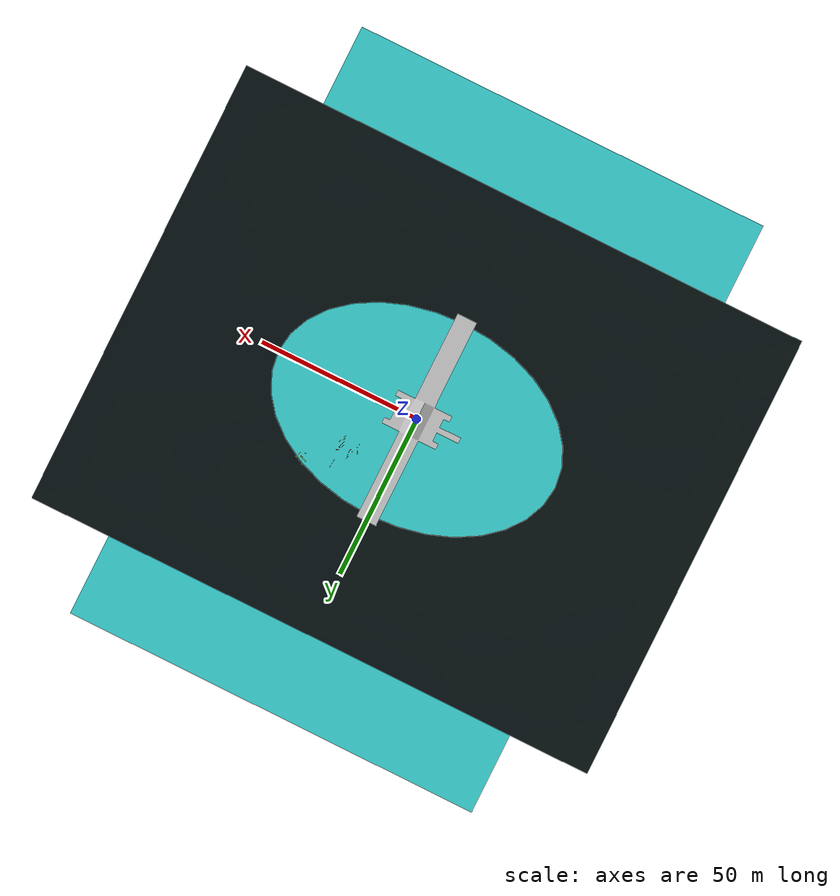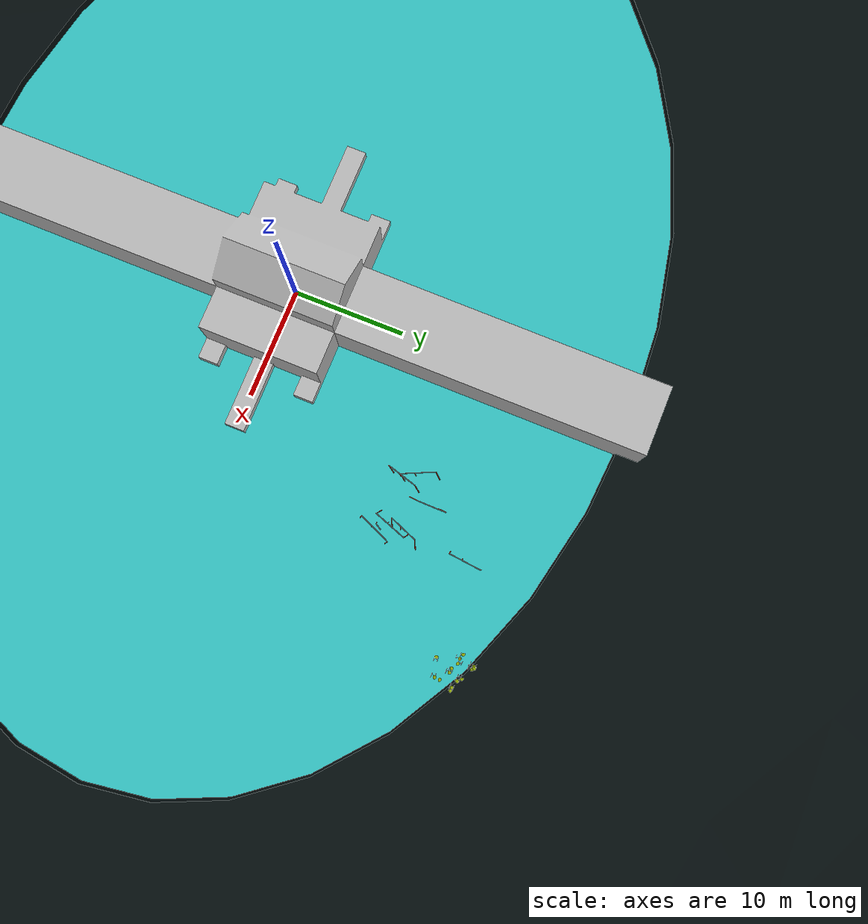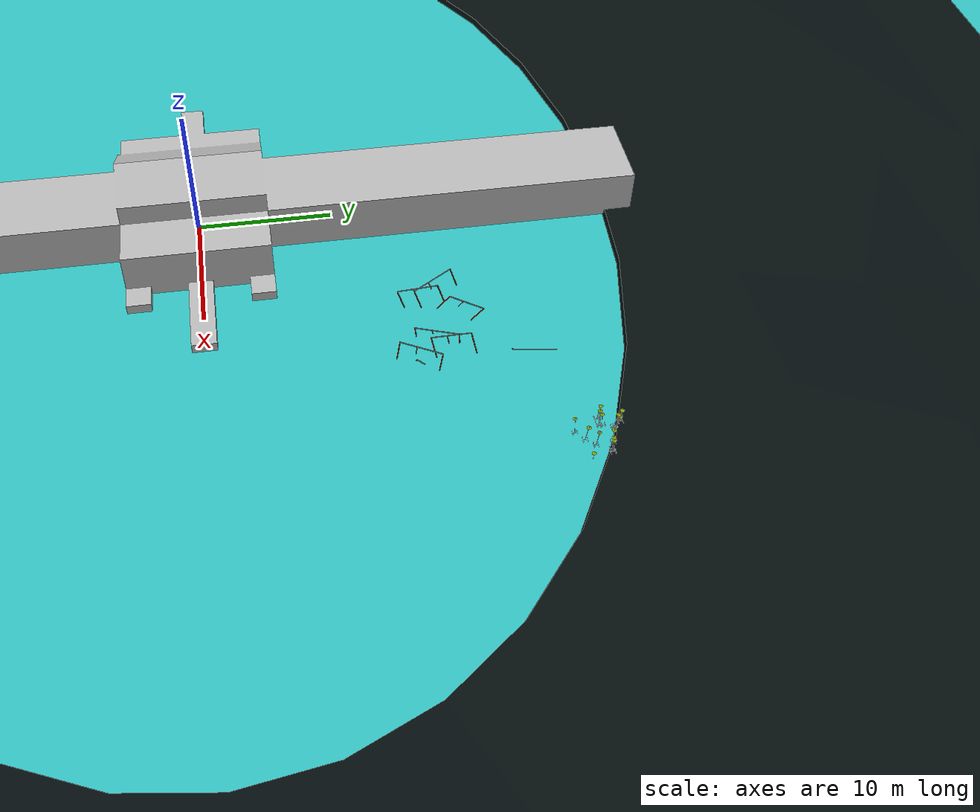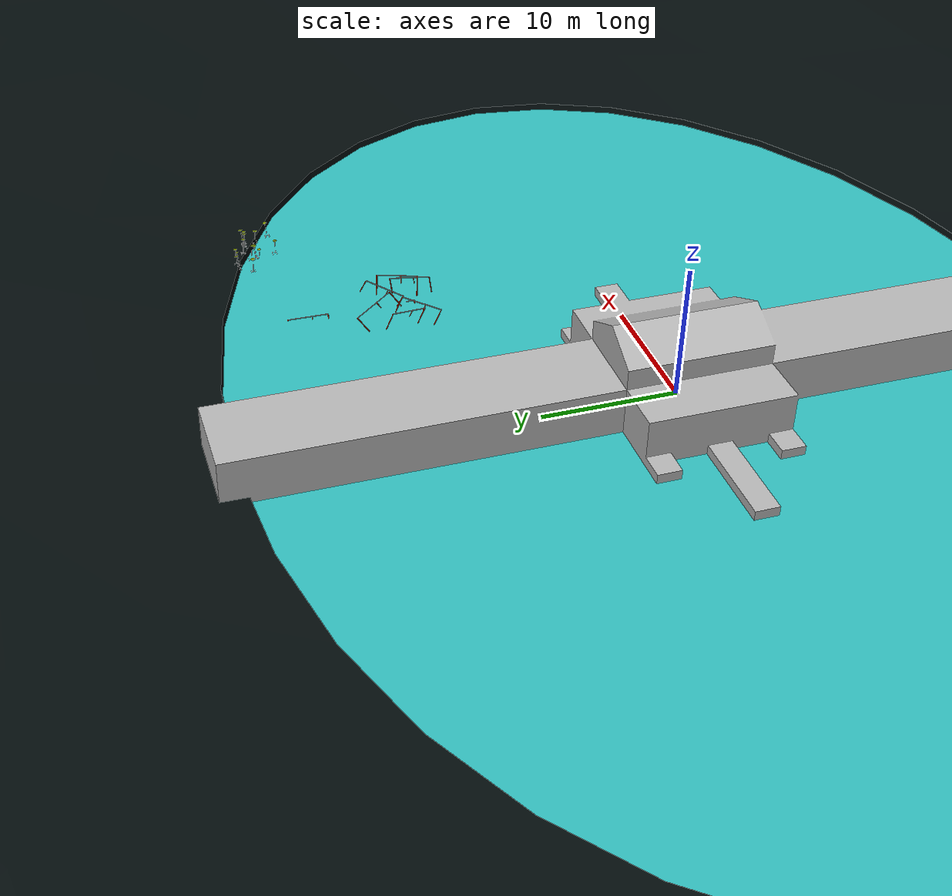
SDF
<sdf version="1.6">
 <world name="lake">
  <physics default="1" name="default_physics" type="ode">
   <max_step_size>0.002</max_step_size>
   <real_time_factor>1</real_time_factor>
   <real_time_update_rate>500</real_time_update_rate>
   <ode>
    <solver>
     <type>quick</type>
     <iters>50</iters>
     <sor>0.5</sor>
     <use_dynamic_moi_rescaling>0</use_dynamic_moi_rescaling>
    </solver>
    <constraints>
     <cfm>0</cfm>
     <erp>0.2</erp>
     <contact_max_correcting_vel>100</contact_max_correcting_vel>
     <contact_surface_layer>0.001</contact_surface_layer>
    </constraints>
   </ode>
  </physics>
  <scene>
   <sky><clouds><speed>0</speed></clouds></sky>
   <shadows>1</shadows>
   <background>0.7 0.7 0.7 1</background>
   <ambient>0.0167654080885 -0.00474146357599 -0.0837017731514 0.995824889529</ambient>
   <fog>
    <color>0.0983605187622 0.187515055023 0.332495478228 0.998556682466</color>
    <type>linear</type>
    <start>4</start>
    <end>-1</end>
   </fog>
  </scene>
  <spherical_coordinates>
   <latitude_deg>47.6279</latitude_deg>
   <longitude_deg>9.33455</longitude_deg>
   <surface_model>EARTH_WGS84</surface_model>
   <elevation>0</elevation>
   <heading_deg>0</heading_deg>
  </spherical_coordinates>
  <model name="world_ned">
   <static>1</static>
   <link name="world_ned">
    <gravity>0</gravity>
    <pose>0 0 0 -3.14159 -0 1.5708</pose>
    <visual name="N_visual">
     <pose>0.25 0 0 1.5708 -0 1.5708</pose>
     <geometry><cylinder><radius>0.01</radius><length>0.5</length></cylinder></geometry>
     <material>
      <script><uri>file://media/materials/scripts/gazebo.material</uri><name>Gazebo/Red</name></script>
     </material>
    </visual>
    <visual name="E_visual">
     <pose>0 0.25 0 1.5708 -0 0</pose>
     <geometry><cylinder><radius>0.01</radius><length>0.5</length></cylinder></geometry>
     <material>
      <script><uri>file://media/materials/scripts/gazebo.material</uri><name>Gazebo/Green</name></script>
     </material>
    </visual>
    <visual name="D_visual">
     <pose>0 0 0.25 0 -0 0</pose>
     <geometry><cylinder><radius>0.01</radius><length>0.5</length></cylinder></geometry>
     <material>
      <script><uri>file://media/materials/scripts/gazebo.material</uri><name>Gazebo/Blue</name></script>
     </material>
    </visual>
   </link>
  </model>
  <model name="lake">
   <static>1</static>
   <link name="lake_link">
    <visual name="lake_bottom">
     <cast_shadows>0</cast_shadows>
     <pose>0 0 0.5 0 0 0</pose>
     <geometry><mesh><uri>model://transdec/meshes/transdec.dae</uri><scale>1 1 1</scale></mesh></geometry>
     <material>
      <script>
       <uri>file://Media/materials/scripts/sand.material</uri>
       <name>UUVSimulator/SandAndStones</name>
      </script>
     </material>
    </visual>
    <collision name="lake_bottom">
     <pose>0 0 0.5 0 -0 0</pose>
     <geometry><mesh><uri>model://transdec/meshes/transdec.dae</uri><scale>1 1 1</scale></mesh></geometry>
    </collision>
    <visual name="surface">
     <geometry>
      <mesh><uri>model://water_surface/meshes/water_surface.dae</uri><scale>1 1 1</scale></mesh>
     </geometry>
     <material>
      <script>
       <uri>file://Media/materials/scripts/water.material</uri>
       <name>UUVSimulator/StaticTurquoiseWater</name>
      </script>
     </material>
    </visual>
   </link>
  </model>
  <plugin filename="libuuv_underwater_current_ros_plugin.so" name="underwater_current_plugin">
   <namespace>hydrodynamics</namespace>
   <constant_current>
    <topic>current_velocity</topic>
    <velocity><mean>0</mean><min>0</min><max>5</max><mu>0.0</mu><noiseAmp>0.0</noiseAmp></velocity>
    <horizontal_angle>
     <mean>0</mean>
     <min>-3.141592653589793238</min>
     <max>3.141592653589793238</max>
     <mu>0.0</mu>
     <noiseAmp>0.0</noiseAmp>
    </horizontal_angle>
    <vertical_angle>
     <mean>0</mean>
     <min>-3.141592653589793238</min>
     <max>3.141592653589793238</max>
     <mu>0.0</mu>
     <noiseAmp>0.0</noiseAmp>
    </vertical_angle>
   </constant_current>
  </plugin>
  <plugin filename="libuuv_sc_ros_interface_plugin.so" name="sc_interface"/>
  <gravity>0 0 -9.8</gravity>
  <magnetic_field>6e-06 2.3e-05 -4.2e-05</magnetic_field>
  <atmosphere type="adiabatic"/>
  <model name="transdec_bridge">
   <static>1</static>
   <link name="link">
    <must_be_base_link>1</must_be_base_link>
    <visual name="visual">
     <cast_shadows>0</cast_shadows>
     <geometry><mesh><uri>model://transdec_bridge/meshes/transdec_bridge.dae</uri></mesh></geometry>
    </visual>
   </link>
  </model>
  <light name="sun" type="directional">
   <pose>18.2126076957 -5.79946119974 -6.02682607657 1.12919550986 1.44755098993 -0.985897130758</pose>
   <diffuse>0.950566882061 0.898385869062 1.03819154277 1.12826140491</diffuse>
   <specular>0.108822657704 0.0932887104255 0.106470574288 0.993148982195</specular>
   <direction>-0.0866389352842 0.00464495822582 -0.843713179104</direction>
  </light>
  <model name="gate1">
   <static>true</static>
   <link name="link">
    <must_be_base_link>1</must_be_base_link>
    <visual name="visual">
     <cast_shadows>0</cast_shadows>
     <geometry><mesh><uri>model://gate/meshes/gate.dae</uri></mesh></geometry>
    </visual>
    <collision name="collision">
     <geometry><mesh><uri>model://gate/meshes/gate.dae</uri></mesh></geometry>
    </collision>
    <sensor name="gate_success_zones" type="contact">
     <topic>gate_detect</topic>
     <update_rate>5</update_rate>
     <contact>
      <collision><geometry><mesh><uri>model://gate/meshes/gate_success_zones.dae</uri></mesh></geometry></collision>
     </contact>
    </sensor>
   </link>
   <pose>15.1254934937 21.0007900945 -0.778530676202 0.844097662915 0.0557839341935 1.4730426383</pose>
  </model>
  <model name="crucifix_tower1">
   <static>1</static>
   <link name="link">
    <must_be_base_link>1</must_be_base_link>
    <visual name="visual">
     <cast_shadows>0</cast_shadows>
     <geometry><mesh><uri>model://crucifix_tower/meshes/crucifix_tower.dae</uri></mesh></geometry>
    </visual>
   </link>
   <pose>23.9417196431 24.7304361303 1.20192088728 -0.00515746311289 0.131057945724 1.64463283784</pose>
  </model>
  <model name="gate1">
   <static>true</static>
   <link name="link">
    <must_be_base_link>1</must_be_base_link>
    <visual name="visual">
     <cast_shadows>0</cast_shadows>
     <geometry><mesh><uri>model://gate/meshes/gate.dae</uri></mesh></geometry>
    </visual>
    <collision name="collision">
     <geometry><mesh><uri>model://gate/meshes/gate.dae</uri></mesh></geometry>
    </collision>
    <sensor name="gate_success_zones" type="contact">
     <topic>gate_detect</topic>
     <update_rate>5</update_rate>
     <contact>
      <collision><geometry><mesh><uri>model://gate/meshes/gate_success_zones.dae</uri></mesh></geometry></collision>
     </contact>
    </sensor>
   </link>
   <pose>16.4292639358 14.6917078046 -2.4962130583 0.32237252932 -0.208764738259 2.17935145505</pose>
  </model>
  <model name="crucifix_tower1">
   <static>1</static>
   <link name="link">
    <must_be_base_link>1</must_be_base_link>
    <visual name="visual">
     <cast_shadows>0</cast_shadows>
     <geometry><mesh><uri>model://crucifix_tower/meshes/crucifix_tower.dae</uri></mesh></geometry>
    </visual>
   </link>
   <pose>26.2738611325 25.1615546388 0.896292136785 0.0242967922557 -0.0195096788973 1.47094460901</pose>
  </model>
  <model name="gate1">
   <static>true</static>
   <link name="link">
    <must_be_base_link>1</must_be_base_link>
    <visual name="visual">
     <cast_shadows>0</cast_shadows>
     <geometry><mesh><uri>model://gate/meshes/gate.dae</uri></mesh></geometry>
    </visual>
    <collision name="collision">
     <geometry><mesh><uri>model://gate/meshes/gate.dae</uri></mesh></geometry>
    </collision>
    <sensor name="gate_success_zones" type="contact">
     <topic>gate_detect</topic>
     <update_rate>5</update_rate>
     <contact>
      <collision><geometry><mesh><uri>model://gate/meshes/gate_success_zones.dae</uri></mesh></geometry></collision>
     </contact>
    </sensor>
   </link>
   <pose>15.5004476086 18.8384074119 -3.89074958337 0.38006776586 0.260157247392 1.63485411441</pose>
  </model>
  <model name="crucifix_tower1">
   <static>1</static>
   <link name="link">
    <must_be_base_link>1</must_be_base_link>
    <visual name="visual">
     <cast_shadows>0</cast_shadows>
     <geometry><mesh><uri>model://crucifix_tower/meshes/crucifix_tower.dae</uri></mesh></geometry>
    </visual>
   </link>
   <pose>26.1925533191 24.0456357121 -0.623667039147 0.00129578367662 0.0118639929148 1.5430887067</pose>
  </model>
  <model name="gate1">
   <static>true</static>
   <link name="link">
    <must_be_base_link>1</must_be_base_link>
    <visual name="visual">
     <cast_shadows>0</cast_shadows>
     <geometry><mesh><uri>model://gate/meshes/gate.dae</uri></mesh></geometry>
    </visual>
    <collision name="collision">
     <geometry><mesh><uri>model://gate/meshes/gate.dae</uri></mesh></geometry>
    </collision>
    <sensor name="gate_success_zones" type="contact">
     <topic>gate_detect</topic>
     <update_rate>5</update_rate>
     <contact>
      <collision><geometry><mesh><uri>model://gate/meshes/gate_success_zones.dae</uri></mesh></geometry></collision>
     </contact>
    </sensor>
   </link>
   <pose>16.045038436 15.6657019762 0.016064787976 -0.34948481688 -0.401477646881 1.17421973306</pose>
  </model>
  <model name="crucifix_tower1">
   <static>1</static>
   <link name="link">
    <must_be_base_link>1</must_be_base_link>
    <visual name="visual">
     <cast_shadows>0</cast_shadows>
     <geometry><mesh><uri>model://crucifix_tower/meshes/crucifix_tower.dae</uri></mesh></geometry>
    </visual>
   </link>
   <pose>25.9702960703 23.3887764241 1.79484242345 0.0257193378333 0.111844830569 1.54149088162</pose>
  </model>
  <model name="gate1">
   <static>true</static>
   <link name="link">
    <must_be_base_link>1</must_be_base_link>
    <visual name="visual">
     <cast_shadows>0</cast_shadows>
     <geometry><mesh><uri>model://gate/meshes/gate.dae</uri></mesh></geometry>
    </visual>
    <collision name="collision">
     <geometry><mesh><uri>model://gate/meshes/gate.dae</uri></mesh></geometry>
    </collision>
    <sensor name="gate_success_zones" type="contact">
     <topic>gate_detect</topic>
     <update_rate>5</update_rate>
     <contact>
      <collision><geometry><mesh><uri>model://gate/meshes/gate_success_zones.dae</uri></mesh></geometry></collision>
     </contact>
    </sensor>
   </link>
   <pose>12.3416079216 12.837257329 -4.67205659003 -0.152578635036 0.514386179061 2.05289592563</pose>
  </model>
  <model name="crucifix_tower1">
   <static>1</static>
   <link name="link">
    <must_be_base_link>1</must_be_base_link>
    <visual name="visual">
     <cast_shadows>0</cast_shadows>
     <geometry><mesh><uri>model://crucifix_tower/meshes/crucifix_tower.dae</uri></mesh></geometry>
    </visual>
   </link>
   <pose>23.6262504035 25.0577951715 0.221228053877 -0.0686323129111 0.0090503051307 1.64825233166</pose>
  </model>
  <model name="gate1">
   <static>true</static>
   <link name="link">
    <must_be_base_link>1</must_be_base_link>
    <visual name="visual">
     <cast_shadows>0</cast_shadows>
     <geometry><mesh><uri>model://gate/meshes/gate.dae</uri></mesh></geometry>
    </visual>
    <collision name="collision">
     <geometry><mesh><uri>model://gate/meshes/gate.dae</uri></mesh></geometry>
    </collision>
    <sensor name="gate_success_zones" type="contact">
     <topic>gate_detect</topic>
     <update_rate>5</update_rate>
     <contact>
      <collision><geometry><mesh><uri>model://gate/meshes/gate_success_zones.dae</uri></mesh></geometry></collision>
     </contact>
    </sensor>
   </link>
   <pose>13.7722483064 14.5544470505 -4.24416033581 0.261671976102 -0.0732646450894 1.70012023832</pose>
  </model>
  <model name="crucifix_tower1">
   <static>1</static>
   <link name="link">
    <must_be_base_link>1</must_be_base_link>
    <visual name="visual">
     <cast_shadows>0</cast_shadows>
     <geometry><mesh><uri>model://crucifix_tower/meshes/crucifix_tower.dae</uri></mesh></geometry>
    </visual>
   </link>
   <pose>26.5068859958 25.1727251709 0.943399038394 0.0715170518681 -0.0545247034271 1.50141127646</pose>
  </model>
  <model name="gate1">
   <static>true</static>
   <link name="link">
    <must_be_base_link>1</must_be_base_link>
    <visual name="visual">
     <cast_shadows>0</cast_shadows>
     <geometry><mesh><uri>model://gate/meshes/gate.dae</uri></mesh></geometry>
    </visual>
    <collision name="collision">
     <geometry><mesh><uri>model://gate/meshes/gate.dae</uri></mesh></geometry>
    </collision>
    <sensor name="gate_success_zones" type="contact">
     <topic>gate_detect</topic>
     <update_rate>5</update_rate>
     <contact>
      <collision><geometry><mesh><uri>model://gate/meshes/gate_success_zones.dae</uri></mesh></geometry></collision>
     </contact>
    </sensor>
   </link>
   <pose>12.0512549273 15.2114583726 0.988195128182 -0.27513646457 -0.236769029297 1.96416849117</pose>
  </model>
  <model name="crucifix_tower1">
   <static>1</static>
   <link name="link">
    <must_be_base_link>1</must_be_base_link>
    <visual name="visual">
     <cast_shadows>0</cast_shadows>
     <geometry><mesh><uri>model://crucifix_tower/meshes/crucifix_tower.dae</uri></mesh></geometry>
    </visual>
   </link>
   <pose>25.6043119493 25.4126804265 0.789910895842 0.0598178189197 -0.0491462629567 1.51792846047</pose>
  </model>
  <model name="gate1">
   <static>true</static>
   <link name="link">
    <must_be_base_link>1</must_be_base_link>
    <visual name="visual">
     <cast_shadows>0</cast_shadows>
     <geometry><mesh><uri>model://gate/meshes/gate.dae</uri></mesh></geometry>
    </visual>
    <collision name="collision">
     <geometry><mesh><uri>model://gate/meshes/gate.dae</uri></mesh></geometry>
    </collision>
    <sensor name="gate_success_zones" type="contact">
     <topic>gate_detect</topic>
     <update_rate>5</update_rate>
     <contact>
      <collision><geometry><mesh><uri>model://gate/meshes/gate_success_zones.dae</uri></mesh></geometry></collision>
     </contact>
    </sensor>
   </link>
   <pose>11.7304749508 14.0668092739 0.824481825661 -0.053026686112 -0.356157035266 1.24983256527</pose>
  </model>
  <model name="crucifix_tower1">
   <static>1</static>
   <link name="link">
    <must_be_base_link>1</must_be_base_link>
    <visual name="visual">
     <cast_shadows>0</cast_shadows>
     <geometry><mesh><uri>model://crucifix_tower/meshes/crucifix_tower.dae</uri></mesh></geometry>
    </visual>
   </link>
   <pose>25.3200799954 24.4357761332 0.282152153713 -0.0176084092929 0.100717493715 1.57446530148</pose>
  </model>
  <model name="gate1">
   <static>true</static>
   <link name="link">
    <must_be_base_link>1</must_be_base_link>
    <visual name="visual">
     <cast_shadows>0</cast_shadows>
     <geometry><mesh><uri>model://gate/meshes/gate.dae</uri></mesh></geometry>
    </visual>
    <collision name="collision">
     <geometry><mesh><uri>model://gate/meshes/gate.dae</uri></mesh></geometry>
    </collision>
    <sensor name="gate_success_zones" type="contact">
     <topic>gate_detect</topic>
     <update_rate>5</update_rate>
     <contact>
      <collision><geometry><mesh><uri>model://gate/meshes/gate_success_zones.dae</uri></mesh></geometry></collision>
     </contact>
    </sensor>
   </link>
   <pose>15.3709770344 14.2132453953 -1.02515360925 0.500609477867 0.36091276948 1.05322357796</pose>
  </model>
  <model name="crucifix_tower1">
   <static>1</static>
   <link name="link">
    <must_be_base_link>1</must_be_base_link>
    <visual name="visual">
     <cast_shadows>0</cast_shadows>
     <geometry><mesh><uri>model://crucifix_tower/meshes/crucifix_tower.dae</uri></mesh></geometry>
    </visual>
   </link>
   <pose>24.1089916049 26.2735737125 0.886671978667 0.0947541115112 -0.0390591511102 1.73795605041</pose>
  </model>
  <model name="gate1">
   <static>true</static>
   <link name="link">
    <must_be_base_link>1</must_be_base_link>
    <visual name="visual">
     <cast_shadows>0</cast_shadows>
     <geometry><mesh><uri>model://gate/meshes/gate.dae</uri></mesh></geometry>
    </visual>
    <collision name="collision">
     <geometry><mesh><uri>model://gate/meshes/gate.dae</uri></mesh></geometry>
    </collision>
    <sensor name="gate_success_zones" type="contact">
     <topic>gate_detect</topic>
     <update_rate>5</update_rate>
     <contact>
      <collision><geometry><mesh><uri>model://gate/meshes/gate_success_zones.dae</uri></mesh></geometry></collision>
     </contact>
    </sensor>
   </link>
   <pose>13.3274772542 17.2034314253 -1.97286820629 0.423403966741 0.535377191636 1.53587864444</pose>
  </model>
  <model name="crucifix_tower1">
   <static>1</static>
   <link name="link">
    <must_be_base_link>1</must_be_base_link>
    <visual name="visual">
     <cast_shadows>0</cast_shadows>
     <geometry><mesh><uri>model://crucifix_tower/meshes/crucifix_tower.dae</uri></mesh></geometry>
    </visual>
   </link>
   <pose>24.0491467849 26.0829255483 0.334273259244 0.0656300190289 0.113939511469 1.71042192231</pose>
  </model>
  <model name="gate1">
   <static>true</static>
   <link name="link">
    <must_be_base_link>1</must_be_base_link>
    <visual name="visual">
     <cast_shadows>0</cast_shadows>
     <geometry><mesh><uri>model://gate/meshes/gate.dae</uri></mesh></geometry>
    </visual>
    <collision name="collision">
     <geometry><mesh><uri>model://gate/meshes/gate.dae</uri></mesh></geometry>
    </collision>
    <sensor name="gate_success_zones" type="contact">
     <topic>gate_detect</topic>
     <update_rate>5</update_rate>
     <contact>
      <collision><geometry><mesh><uri>model://gate/meshes/gate_success_zones.dae</uri></mesh></geometry></collision>
     </contact>
    </sensor>
   </link>
   <pose>11.516521002 14.2061248505 -3.03442971276 -0.286793555313 0.703710655038 2.06435425065</pose>
  </model>
  <model name="crucifix_tower1">
   <static>1</static>
   <link name="link">
    <must_be_base_link>1</must_be_base_link>
    <visual name="visual">
     <cast_shadows>0</cast_shadows>
     <geometry><mesh><uri>model://crucifix_tower/meshes/crucifix_tower.dae</uri></mesh></geometry>
    </visual>
   </link>
   <pose>24.6898167977 23.1217456971 0.978356909619 -0.151003959807 -0.02964702555 1.60668858338</pose>
  </model>
  <model name="gate1">
   <static>true</static>
   <link name="link">
    <must_be_base_link>1</must_be_base_link>
    <visual name="visual">
     <cast_shadows>0</cast_shadows>
     <geometry><mesh><uri>model://gate/meshes/gate.dae</uri></mesh></geometry>
    </visual>
    <collision name="collision">
     <geometry><mesh><uri>model://gate/meshes/gate.dae</uri></mesh></geometry>
    </collision>
    <sensor name="gate_success_zones" type="contact">
     <topic>gate_detect</topic>
     <update_rate>5</update_rate>
     <contact>
      <collision><geometry><mesh><uri>model://gate/meshes/gate_success_zones.dae</uri></mesh></geometry></collision>
     </contact>
    </sensor>
   </link>
   <pose>16.3211813583 12.8625544969 0.620982814277 -0.137481984563 0.119845391199 1.16898727926</pose>
  </model>
  <model name="crucifix_tower1">
   <static>1</static>
   <link name="link">
    <must_be_base_link>1</must_be_base_link>
    <visual name="visual">
     <cast_shadows>0</cast_shadows>
     <geometry><mesh><uri>model://crucifix_tower/meshes/crucifix_tower.dae</uri></mesh></geometry>
    </visual>
   </link>
   <pose>24.2861123259 25.0624524346 0.908651512074 0.0762715539993 -0.149555994185 1.50821967773</pose>
  </model>
  <model name="gate1">
   <static>true</static>
   <link name="link">
    <must_be_base_link>1</must_be_base_link>
    <visual name="visual">
     <cast_shadows>0</cast_shadows>
     <geometry><mesh><uri>model://gate/meshes/gate.dae</uri></mesh></geometry>
    </visual>
    <collision name="collision">
     <geometry><mesh><uri>model://gate/meshes/gate.dae</uri></mesh></geometry>
    </collision>
    <sensor name="gate_success_zones" type="contact">
     <topic>gate_detect</topic>
     <update_rate>5</update_rate>
     <contact>
      <collision><geometry><mesh><uri>model://gate/meshes/gate_success_zones.dae</uri></mesh></geometry></collision>
     </contact>
    </sensor>
   </link>
   <pose>17.5123013094 15.3116312882 -1.64142341624 0.781596250445 0.165308161702 1.55683506979</pose>
  </model>
  <model name="crucifix_tower1">
   <static>1</static>
   <link name="link">
    <must_be_base_link>1</must_be_base_link>
    <visual name="visual">
     <cast_shadows>0</cast_shadows>
     <geometry><mesh><uri>model://crucifix_tower/meshes/crucifix_tower.dae</uri></mesh></geometry>
    </visual>
   </link>
   <pose>25.2955845108 25.3820706204 1.87576900034 0.037958041433 0.169403861298 1.61116649773</pose>
  </model>
  <model name="gate1">
   <static>true</static>
   <link name="link">
    <must_be_base_link>1</must_be_base_link>
    <visual name="visual">
     <cast_shadows>0</cast_shadows>
     <geometry><mesh><uri>model://gate/meshes/gate.dae</uri></mesh></geometry>
    </visual>
    <collision name="collision">
     <geometry><mesh><uri>model://gate/meshes/gate.dae</uri></mesh></geometry>
    </collision>
    <sensor name="gate_success_zones" type="contact">
     <topic>gate_detect</topic>
     <update_rate>5</update_rate>
     <contact>
      <collision><geometry><mesh><uri>model://gate/meshes/gate_success_zones.dae</uri></mesh></geometry></collision>
     </contact>
    </sensor>
   </link>
   <pose>13.2392634844 16.1100351026 1.93000279707 0.175930644763 0.599469830172 1.6403322974</pose>
  </model>
  <model name="crucifix_tower1">
   <static>1</static>
   <link name="link">
    <must_be_base_link>1</must_be_base_link>
    <visual name="visual">
     <cast_shadows>0</cast_shadows>
     <geometry><mesh><uri>model://crucifix_tower/meshes/crucifix_tower.dae</uri></mesh></geometry>
    </visual>
   </link>
   <pose>25.0591789268 24.5292622489 1.90060430268 -0.175584696868 -0.00937780167073 1.55047989462</pose>
  </model>
  <model name="gate1">
   <static>true</static>
   <link name="link">
    <must_be_base_link>1</must_be_base_link>
    <visual name="visual">
     <cast_shadows>0</cast_shadows>
     <geometry><mesh><uri>model://gate/meshes/gate.dae</uri></mesh></geometry>
    </visual>
    <collision name="collision">
     <geometry><mesh><uri>model://gate/meshes/gate.dae</uri></mesh></geometry>
    </collision>
    <sensor name="gate_success_zones" type="contact">
     <topic>gate_detect</topic>
     <update_rate>5</update_rate>
     <contact>
      <collision><geometry><mesh><uri>model://gate/meshes/gate_success_zones.dae</uri></mesh></geometry></collision>
     </contact>
    </sensor>
   </link>
   <pose>15.0912542503 14.3841297745 1.31378671545 0.38381857416 0.00194006105685 1.23075933687</pose>
  </model>
  <model name="crucifix_tower1">
   <static>1</static>
   <link name="link">
    <must_be_base_link>1</must_be_base_link>
    <visual name="visual">
     <cast_shadows>0</cast_shadows>
     <geometry><mesh><uri>model://crucifix_tower/meshes/crucifix_tower.dae</uri></mesh></geometry>
    </visual>
   </link>
   <pose>24.3359677795 25.9883133611 0.519433931822 0.0727305716803 0.116832107567 1.76376987322</pose>
  </model>
 </world>
</sdf>
